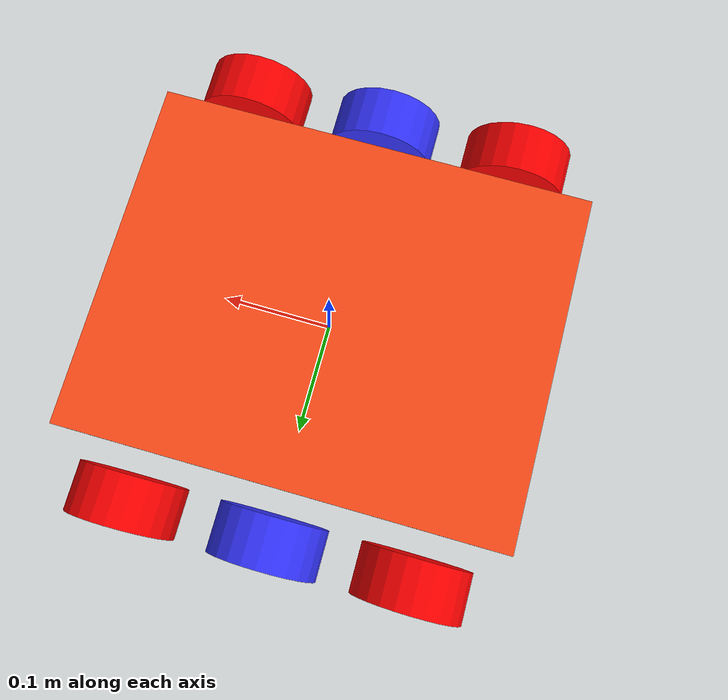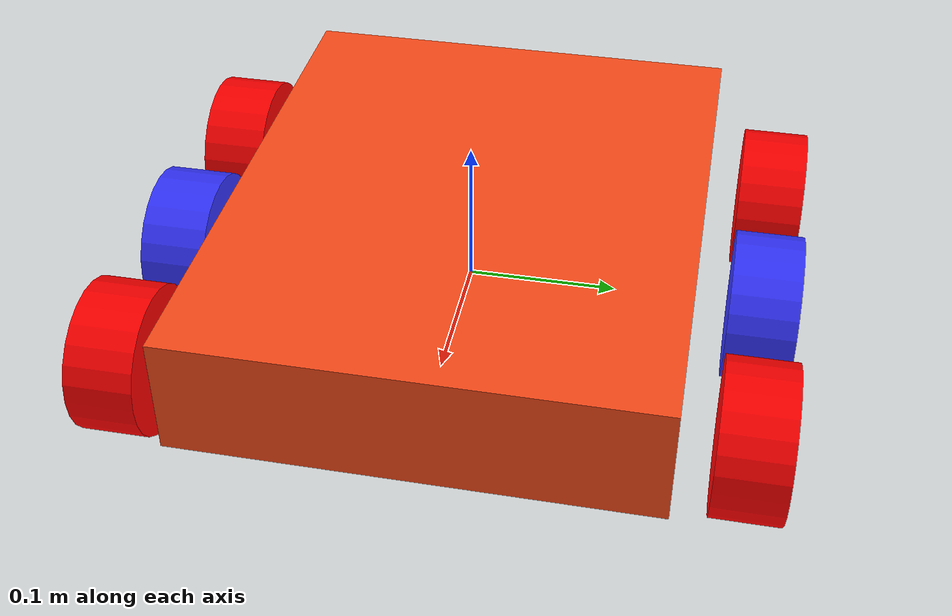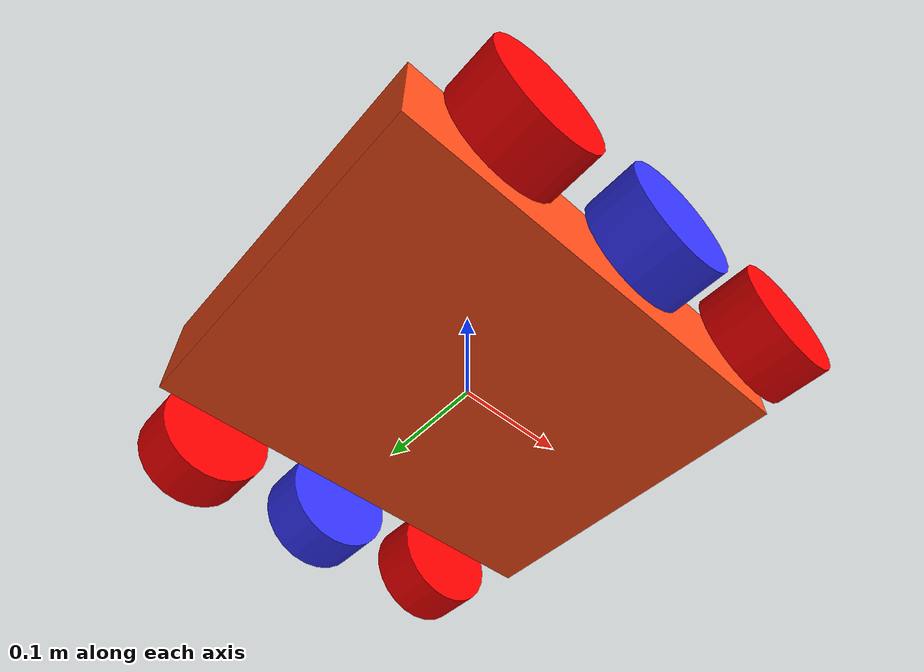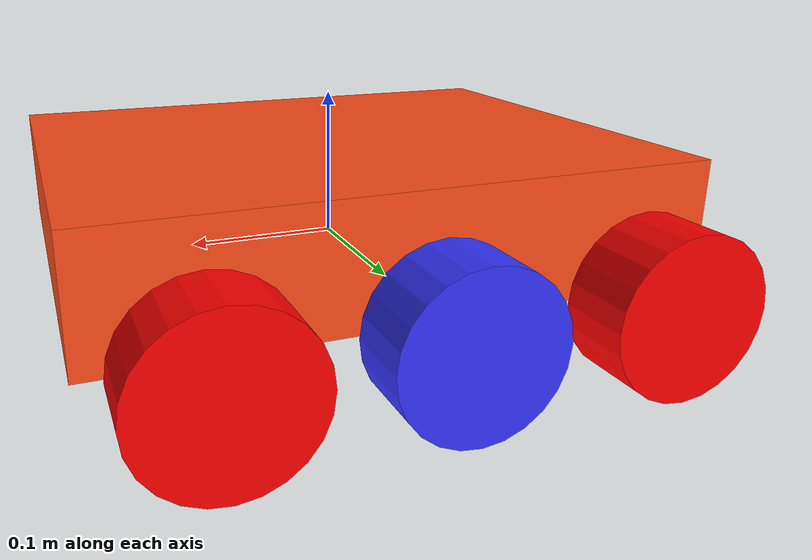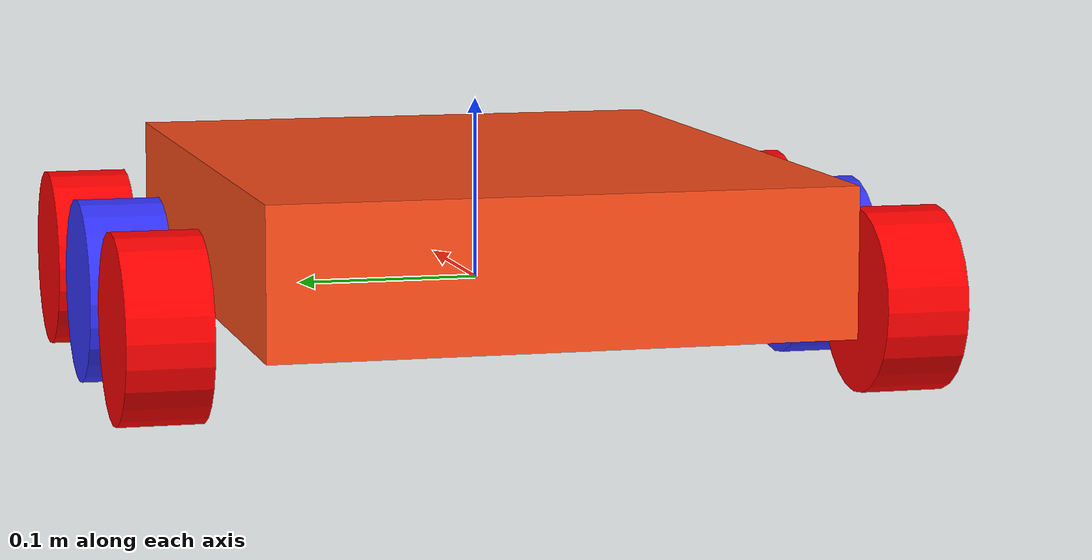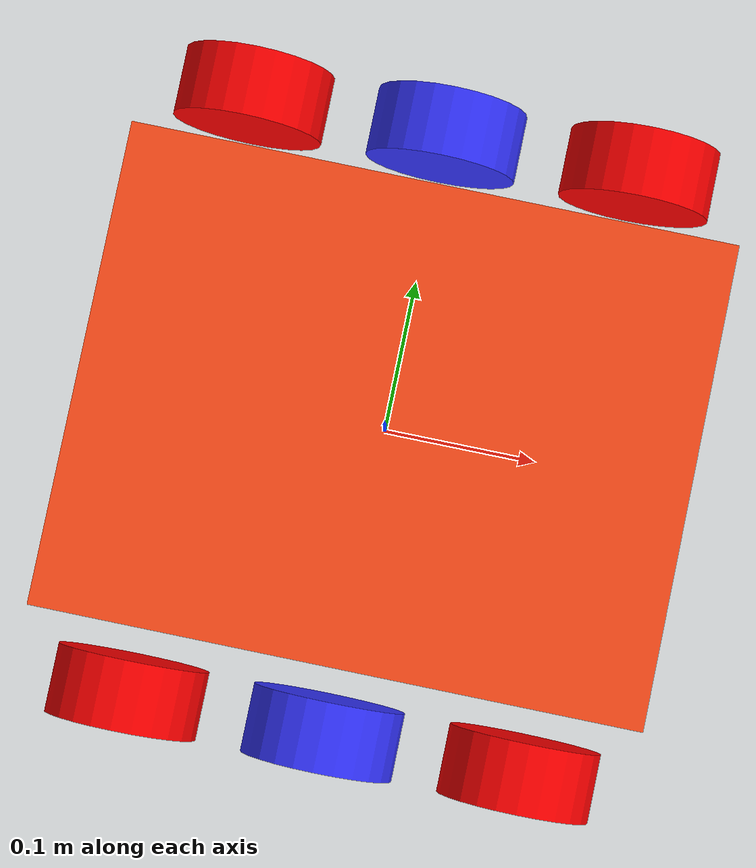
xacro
<?xml version="1.0"?>
<robot xmlns:xacro="http://www.ros.org/wiki/xacro" >

    <xacro:include filename="inertial_macros.xacro"/>

    <xacro:property name="chassis_length" value="0.39"/>
    <xacro:property name="chassis_width" value="0.31"/>
    <xacro:property name="chassis_height" value="0.08"/>
    <xacro:property name="chassis_mass" value="1.0"/>
    <xacro:property name="wheel_radius" value="0.05"/>
    <xacro:property name="wheel_thickness" value="0.045"/>
    <xacro:property name="wheel_mass" value="0.05"/>
    <xacro:property name="wheel_offset_x" value="0.195"/>
    <xacro:property name="wheel_offset_y" value="0.2"/>
    <xacro:property name="wheel_offset_z" value="0.01"/>

    <material name="white">
        <color rgba="1 1 1 1" />
    </material>

    <material name="orange">
        <color rgba="1 0.3 0.1 1"/>
    </material>

    <material name="blue">
        <color rgba="0.2 0.2 1 1"/>
    </material>

    <material name="black">
        <color rgba="0 0 0 1"/>
    </material>

    <material name="red">
        <color rgba="1 0 0 1"/>
    </material>

    <!-- BASE LINK -->

    <link name="base_link">

    </link>

    <!-- BASE_FOOTPRINT LINK -->

    <joint name="base_footprint_joint" type="fixed">
        <parent link="base_link"/>
        <child link="base_footprint"/>
        <origin xyz="0 0 0" rpy="0 0 0"/>
    </joint>

    <link name="base_footprint">
    </link>

    <!-- CHASSIS LINK -->

    <joint name="chassis_joint" type="fixed">
        <parent link="base_link"/>
        <child link="chassis"/>
        <origin xyz="${-wheel_offset_x} 0 ${-wheel_offset_z}"/>
    </joint>

    <link name="chassis">
        <visual>
            <origin xyz="${chassis_length/2} 0 ${chassis_height/2}"/>
            <geometry>
                <box size="${chassis_length} ${chassis_width} ${chassis_height}"/>
            </geometry>
            <material name="orange"/>
        </visual>
        <collision>
            <origin xyz="${chassis_length/2} 0 ${chassis_height/2}"/>
            <geometry>
                <box size="${chassis_length} ${chassis_width} ${chassis_height}"/>
            </geometry>
        </collision>
        <xacro:inertial_box mass="0.5" x="${chassis_length}" y="${chassis_width}" z="${chassis_height}">
            <origin xyz="${chassis_length/2} 0 ${chassis_height/2}" rpy="0 0 0"/>
        </xacro:inertial_box>
    </link>

    <gazebo reference="chassis">
        <material>Gazebo/Orange</material>
    </gazebo>

    <!-- LEFT WHEEL LINK -->

    <joint name="left_wheel_joint" type="continuous">
        <parent link="base_link"/>
        <child link="left_wheel"/>
        <origin xyz="0 ${wheel_offset_y} 0" rpy="-${pi/2} 0 0" />
        <axis xyz="0 0 1"/>
    </joint>

    <link name="left_wheel">
        <visual>
            <geometry>
                <cylinder radius="${wheel_radius}" length="${wheel_thickness}"/>
            </geometry>
            <material name="blue"/>
        </visual>
        <collision>
            <geometry>
                <sphere radius="${wheel_radius}"/>
            </geometry>
        </collision>
        <xacro:inertial_cylinder mass="${wheel_mass}" length="${wheel_thickness}" radius="${wheel_radius}">
            <origin xyz="0 0 0" rpy="0 0 0"/>
        </xacro:inertial_cylinder>
    </link>

    <gazebo reference="left_wheel">
        <material>Gazebo/Blue</material>
    </gazebo>

    <!-- RIGHT WHEEL LINK -->

    <joint name="right_wheel_joint" type="continuous">
        <parent link="base_link"/>
        <child link="right_wheel"/>
        <origin xyz="0 ${-wheel_offset_y} 0" rpy="${pi/2} 0 0" />
        <axis xyz="0 0 -1"/>
    </joint>

    <link name="right_wheel">
        <visual>
            <geometry>
                <cylinder radius="${wheel_radius}" length="${wheel_thickness}"/>
            </geometry>
            <material name="blue"/>
        </visual>
        <collision>
            <geometry>
                <sphere radius="${wheel_radius}"/>
            </geometry>
        </collision>
        <xacro:inertial_cylinder mass="${wheel_mass}" length="${wheel_thickness}" radius="${wheel_radius}">
            <origin xyz="0 0 0" rpy="0 0 0"/>
        </xacro:inertial_cylinder>
    </link>

    <gazebo reference="right_wheel">
        <material>Gazebo/Blue</material>
    </gazebo>

    <!-- RIGHT ROLLER WHEEL LINK -->

    <joint name="right_roller_joint1" type="fixed">
        <parent link="base_link"/>
        <child link="right_roller1"/>
        <origin xyz="0.13 ${-wheel_offset_y} 0" rpy="${pi/2} 0 0" />
        <axis xyz="0 0 -1"/>
    </joint>

    <link name="right_roller1">
        <visual>
            <geometry>
                <cylinder radius="${wheel_radius}" length="${wheel_thickness}"/>
            </geometry>
            <material name="red"/>
        </visual>
        <collision>
            <geometry>
                <sphere radius="${wheel_radius}"/>
            </geometry>
        </collision>
        <xacro:inertial_cylinder mass="${wheel_mass}" length="${wheel_thickness}" radius="${wheel_radius}">
            <origin xyz="0 0 0" rpy="0 0 0"/>
        </xacro:inertial_cylinder>
    </link>
    <gazebo reference="right_roller1">
        <material>Gazebo/Red</material>
        <mu1 value="0.001"/>
        <mu2 value="0.001"/>
    </gazebo>

    <!-- RIGHT ROLLER WHEEL LINK -->

    <joint name="right_roller_joint2" type="fixed">
        <parent link="base_link"/>
        <child link="right_roller2"/>
        <origin xyz="-0.13 ${-wheel_offset_y} 0" rpy="${pi/2} 0 0" />
        <axis xyz="0 0 -1"/>
    </joint>

    <link name="right_roller2">
        <visual>
            <geometry>
                <cylinder radius="${wheel_radius}" length="${wheel_thickness}"/>
            </geometry>
            <material name="red"/>
        </visual>
        <collision>
            <geometry>
                <sphere radius="${wheel_radius}"/>
            </geometry>
        </collision>
        <xacro:inertial_cylinder mass="${wheel_mass}" length="${wheel_thickness}" radius="${wheel_radius}">
            <origin xyz="0 0 0" rpy="0 0 0"/>
        </xacro:inertial_cylinder>
    </link>
    <gazebo reference="right_roller2">
        <material>Gazebo/Red</material>
        <mu1 value="0.001"/>
        <mu2 value="0.001"/>
    </gazebo>

    <!-- LEFT ROLLER WHEEL LINK -->

    <joint name="left_roller_joint1" type="fixed">
        <parent link="base_link"/>
        <child link="left_roller1"/>
        <origin xyz="0.13 ${wheel_offset_y} 0" rpy="-${pi/2} 0 0" />
        <axis xyz="0 0 1"/>
    </joint>

    <link name="left_roller1">
        <visual>
            <geometry>
                <cylinder radius="${wheel_radius}" length="${wheel_thickness}"/>
            </geometry>
            <material name="red"/>
        </visual>
        <collision>
            <geometry>
                <sphere radius="${wheel_radius}"/>
            </geometry>
        </collision>
        <xacro:inertial_cylinder mass="${wheel_mass}" length="${wheel_thickness}" radius="${wheel_radius}">
            <origin xyz="0 0 0" rpy="0 0 0"/>
        </xacro:inertial_cylinder>
    </link>
    <gazebo reference="left_roller1">
        <material>Gazebo/Red</material>
        <mu1 value="0.001"/>
        <mu2 value="0.001"/>
    </gazebo>

        <!-- LEFT ROLLER WHEEL LINK -->

    <joint name="left_roller_joint2" type="fixed">
        <parent link="base_link"/>
        <child link="left_roller2"/>
        <origin xyz="-0.13 ${wheel_offset_y} 0" rpy="-${pi/2} 0 0" />
        <axis xyz="0 0 1"/>
    </joint>

    <link name="left_roller2">
        <visual>
            <geometry>
                <cylinder radius="${wheel_radius}" length="${wheel_thickness}"/>
            </geometry>
            <material name="red"/>
        </visual>
        <collision>
            <geometry>
                <sphere radius="${wheel_radius}"/>
            </geometry>
        </collision>
        <xacro:inertial_cylinder mass="${wheel_mass}" length="${wheel_thickness}" radius="${wheel_radius}">
            <origin xyz="0 0 0" rpy="0 0 0"/>
        </xacro:inertial_cylinder>
    </link>
    <gazebo reference="left_roller2">
        <material>Gazebo/Red</material>
        <mu1 value="0.001"/>
        <mu2 value="0.001"/>
    </gazebo>

</robot>
